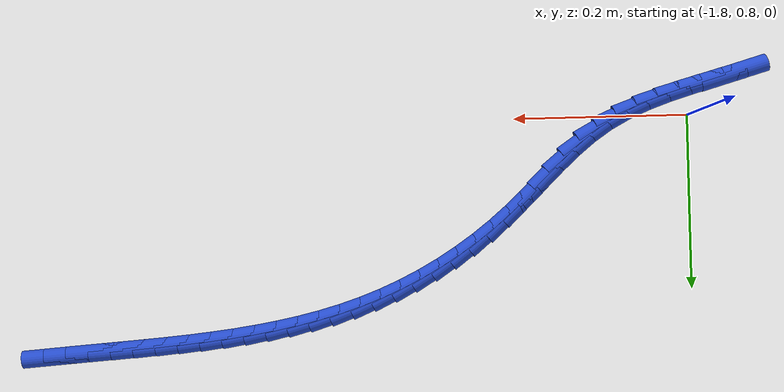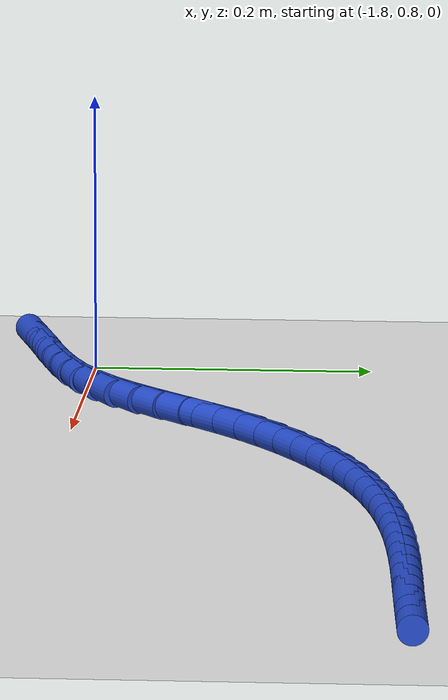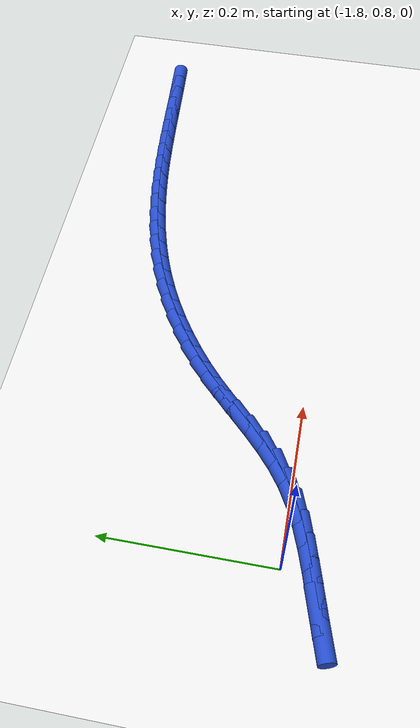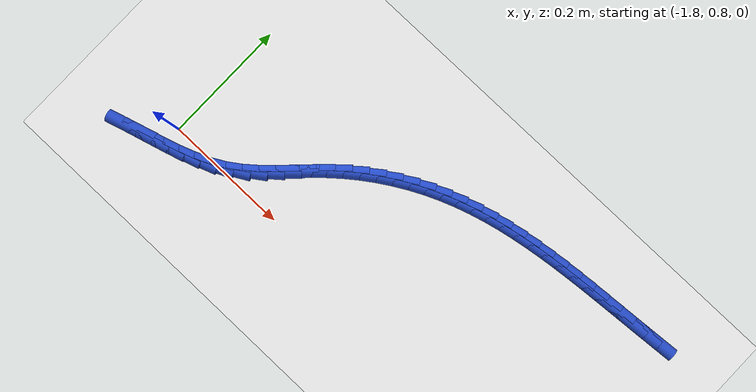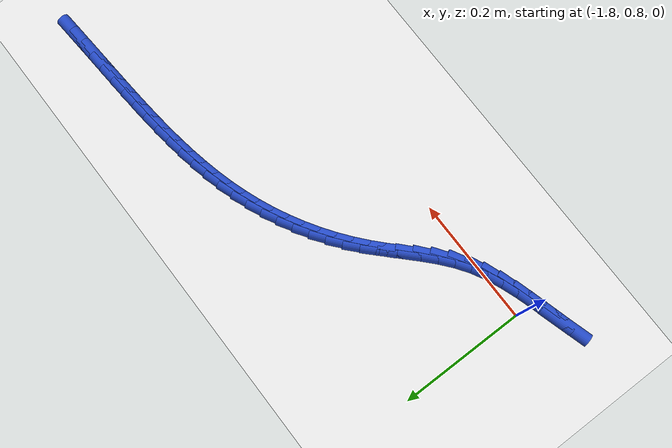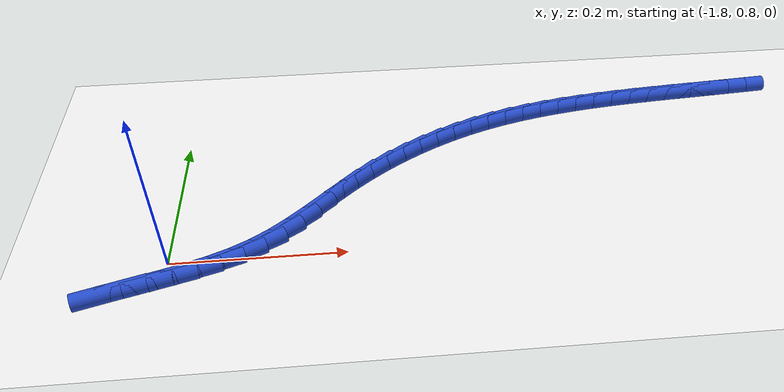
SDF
<sdf version="1.6">
 <world name="default">
  <model name="ground_plane">
   <static>1</static>
   <link name="link">
    <collision name="collision">
     <geometry><plane><normal>0 0 1</normal><size>100 100</size></plane></geometry>
     <surface><friction><ode><mu>100</mu><mu2>50</mu2></ode></friction></surface>
    </collision>
    <visual name="visual">
     <cast_shadows>0</cast_shadows>
     <geometry><plane><normal>0 0 1</normal><size>100 100</size></plane></geometry>
     <material>
      <script><uri>file://media/materials/scripts/gazebo.material</uri><name>Gazebo/WhiteGlow</name></script>
     </material>
    </visual>
   </link>
  </model>
  <model name="line">
   <link name="link_66">
    <pose>-1.0725171072861057 1.0593561913165797 0.01 0 1.57 0.0722436089262853</pose>
    <collision name="collision">
     <geometry><cylinder><radius>0.01</radius><length>0.08</length></cylinder></geometry>
    </collision>
    <visual name="visual">
     <material>
      <script><name>Gazebo/Blue</name><uri>file://media/materials/scripts/gazebo.material</uri></script>
     </material>
     <geometry><cylinder><radius>0.01</radius><length>0.08</length></cylinder></geometry>
    </visual>
   </link>
   <link name="link_67">
    <pose>-1.0976400348149369 1.0575380562307388 0.01 0 1.57 0.07104448228106962</pose>
    <collision name="collision">
     <geometry><cylinder><radius>0.01</radius><length>0.08</length></cylinder></geometry>
    </collision>
    <visual name="visual">
     <material>
      <script><name>Gazebo/Blue</name><uri>file://media/materials/scripts/gazebo.material</uri></script>
     </material>
     <geometry><cylinder><radius>0.01</radius><length>0.08</length></cylinder></geometry>
    </visual>
   </link>
   <link name="link_68">
    <pose>-1.1228500907721137 1.0557440014522426 0.01 0 1.57 0.06941004793169686</pose>
    <collision name="collision">
     <geometry><cylinder><radius>0.01</radius><length>0.08</length></cylinder></geometry>
    </collision>
    <visual name="visual">
     <material>
      <script><name>Gazebo/Blue</name><uri>file://media/materials/scripts/gazebo.material</uri></script>
     </material>
     <geometry><cylinder><radius>0.01</radius><length>0.08</length></cylinder></geometry>
    </visual>
   </link>
   <link name="link_69">
    <pose>-1.148138744328165 1.0539858905070938 0.01 0 1.57 0.0716015597323159</pose>
    <collision name="collision">
     <geometry><cylinder><radius>0.01</radius><length>0.08</length></cylinder></geometry>
    </collision>
    <visual name="visual">
     <material>
      <script><name>Gazebo/Blue</name><uri>file://media/materials/scripts/gazebo.material</uri></script>
     </material>
     <geometry><cylinder><radius>0.01</radius><length>0.08</length></cylinder></geometry>
    </visual>
   </link>
   <link name="link_70">
    <pose>-1.1734703437595058 1.0521690024851331 0.01 0 1.57 0.07769731624842807</pose>
    <collision name="collision">
     <geometry><cylinder><radius>0.01</radius><length>0.08</length></cylinder></geometry>
    </collision>
    <visual name="visual">
     <material>
      <script><name>Gazebo/Blue</name><uri>file://media/materials/scripts/gazebo.material</uri></script>
     </material>
     <geometry><cylinder><radius>0.01</radius><length>0.08</length></cylinder></geometry>
    </visual>
   </link>
   <link name="link_71">
    <pose>-1.198808651156051 1.0501963127779042 0.01 0 1.57 0.08770894665830445</pose>
    <collision name="collision">
     <geometry><cylinder><radius>0.01</radius><length>0.08</length></cylinder></geometry>
    </collision>
    <visual name="visual">
     <material>
      <script><name>Gazebo/Blue</name><uri>file://media/materials/scripts/gazebo.material</uri></script>
     </material>
     <geometry><cylinder><radius>0.01</radius><length>0.08</length></cylinder></geometry>
    </visual>
   </link>
   <link name="link_72">
    <pose>-1.2241174286077159 1.047970796776952 0.01 0 1.57 0.10167119293186301</pose>
    <collision name="collision">
     <geometry><cylinder><radius>0.01</radius><length>0.08</length></cylinder></geometry>
    </collision>
    <visual name="visual">
     <material>
      <script><name>Gazebo/Blue</name><uri>file://media/materials/scripts/gazebo.material</uri></script>
     </material>
     <geometry><cylinder><radius>0.01</radius><length>0.08</length></cylinder></geometry>
    </visual>
   </link>
   <link name="link_73">
    <pose>-1.2493604382044161 1.0453954298738213 0.01 0 1.57 0.11963760003585429</pose>
    <collision name="collision">
     <geometry><cylinder><radius>0.01</radius><length>0.08</length></cylinder></geometry>
    </collision>
    <visual name="visual">
     <material>
      <script><name>Gazebo/Blue</name><uri>file://media/materials/scripts/gazebo.material</uri></script>
     </material>
     <geometry><cylinder><radius>0.01</radius><length>0.08</length></cylinder></geometry>
    </visual>
   </link>
   <link name="link_74">
    <pose>-1.274501442036066 1.0423731874600561 0.01 0 1.57 0.14167440251892457</pose>
    <collision name="collision">
     <geometry><cylinder><radius>0.01</radius><length>0.08</length></cylinder></geometry>
    </collision>
    <visual name="visual">
     <material>
      <script><name>Gazebo/Blue</name><uri>file://media/materials/scripts/gazebo.material</uri></script>
     </material>
     <geometry><cylinder><radius>0.01</radius><length>0.08</length></cylinder></geometry>
    </visual>
   </link>
   <link name="link_75">
    <pose>-1.2995042021925802 1.0388070449272009 0.01 0 1.57 0.16785224706669022</pose>
    <collision name="collision">
     <geometry><cylinder><radius>0.01</radius><length>0.08</length></cylinder></geometry>
    </collision>
    <visual name="visual">
     <material>
      <script><name>Gazebo/Blue</name><uri>file://media/materials/scripts/gazebo.material</uri></script>
     </material>
     <geometry><cylinder><radius>0.01</radius><length>0.08</length></cylinder></geometry>
    </visual>
   </link>
   <link name="link_76">
    <pose>-1.3243324807638752 1.0345999776668007 0.01 0 1.57 0.1982353748869808</pose>
    <collision name="collision">
     <geometry><cylinder><radius>0.01</radius><length>0.08</length></cylinder></geometry>
    </collision>
    <visual name="visual">
     <material>
      <script><name>Gazebo/Blue</name><uri>file://media/materials/scripts/gazebo.material</uri></script>
     </material>
     <geometry><cylinder><radius>0.01</radius><length>0.08</length></cylinder></geometry>
    </visual>
   </link>
   <link name="link_77">
    <pose>-1.3489500398398646 1.029654961070399 0.01 0 1.57 0.23286797814396953</pose>
    <collision name="collision">
     <geometry><cylinder><radius>0.01</radius><length>0.08</length></cylinder></geometry>
    </collision>
    <visual name="visual">
     <material>
      <script><name>Gazebo/Blue</name><uri>file://media/materials/scripts/gazebo.material</uri></script>
     </material>
     <geometry><cylinder><radius>0.01</radius><length>0.08</length></cylinder></geometry>
    </visual>
   </link>
   <link name="link_78">
    <pose>-1.3733206415104644 1.023874970529541 0.01 0 1.57 0.27175769354264806</pose>
    <collision name="collision">
     <geometry><cylinder><radius>0.01</radius><length>0.08</length></cylinder></geometry>
    </collision>
    <visual name="visual">
     <material>
      <script><name>Gazebo/Blue</name><uri>file://media/materials/scripts/gazebo.material</uri></script>
     </material>
     <geometry><cylinder><radius>0.01</radius><length>0.08</length></cylinder></geometry>
    </visual>
   </link>
   <link name="link_79">
    <pose>-1.3974080478655895 1.0171629814357708 0.01 0 1.57 0.31485665595257356</pose>
    <collision name="collision">
     <geometry><cylinder><radius>0.01</radius><length>0.08</length></cylinder></geometry>
    </collision>
    <visual name="visual">
     <material>
      <script><name>Gazebo/Blue</name><uri>file://media/materials/scripts/gazebo.material</uri></script>
     </material>
     <geometry><cylinder><radius>0.01</radius><length>0.08</length></cylinder></geometry>
    </visual>
   </link>
   <link name="link_80">
    <pose>-1.4211760209951538 1.0094219691806328 0.01 0 1.57 0.3620290250035916</pose>
    <collision name="collision">
     <geometry><cylinder><radius>0.01</radius><length>0.08</length></cylinder></geometry>
    </collision>
    <visual name="visual">
     <material>
      <script><name>Gazebo/Blue</name><uri>file://media/materials/scripts/gazebo.material</uri></script>
     </material>
     <geometry><cylinder><radius>0.01</radius><length>0.08</length></cylinder></geometry>
    </visual>
   </link>
   <link name="link_81">
    <pose>-1.4445882470236788 1.0005552646984386 0.01 0 1.57 0.4116936275311137</pose>
    <collision name="collision">
     <geometry><cylinder><radius>0.01</radius><length>0.08</length></cylinder></geometry>
    </collision>
    <visual name="visual">
     <material>
      <script><name>Gazebo/Blue</name><uri>file://media/materials/scripts/gazebo.material</uri></script>
     </material>
     <geometry><cylinder><radius>0.01</radius><length>0.08</length></cylinder></geometry>
    </visual>
   </link>
   <link name="link_82">
    <pose>-1.4675995996724436 0.9905074438376876 0.01 0 1.57 0.4611957048522582</pose>
    <collision name="collision">
     <geometry><cylinder><radius>0.01</radius><length>0.08</length></cylinder></geometry>
    </collision>
    <visual name="visual">
     <material>
      <script><name>Gazebo/Blue</name><uri>file://media/materials/scripts/gazebo.material</uri></script>
     </material>
     <geometry><cylinder><radius>0.01</radius><length>0.08</length></cylinder></geometry>
    </visual>
   </link>
   <link name="link_83">
    <pose>-1.4901480380280288 0.9793022484403023 0.01 0 1.57 0.5104117197355084</pose>
    <collision name="collision">
     <geometry><cylinder><radius>0.01</radius><length>0.08</length></cylinder></geometry>
    </collision>
    <visual name="visual">
     <material>
      <script><name>Gazebo/Blue</name><uri>file://media/materials/scripts/gazebo.material</uri></script>
     </material>
     <geometry><cylinder><radius>0.01</radius><length>0.08</length></cylinder></geometry>
    </visual>
   </link>
   <link name="link_84">
    <pose>-1.5121696054677067 0.966972386491007 0.01 0 1.57 0.5595251586221003</pose>
    <collision name="collision">
     <geometry><cylinder><radius>0.01</radius><length>0.08</length></cylinder></geometry>
    </collision>
    <visual name="visual">
     <material>
      <script><name>Gazebo/Blue</name><uri>file://media/materials/scripts/gazebo.material</uri></script>
     </material>
     <geometry><cylinder><radius>0.01</radius><length>0.08</length></cylinder></geometry>
    </visual>
   </link>
   <link name="link_85">
    <pose>-1.5336003453687537 0.9535505659745285 0.01 0 1.57 0.6087171516924712</pose>
    <collision name="collision">
     <geometry><cylinder><radius>0.01</radius><length>0.08</length></cylinder></geometry>
    </collision>
    <visual name="visual">
     <material>
      <script><name>Gazebo/Blue</name><uri>file://media/materials/scripts/gazebo.material</uri></script>
     </material>
     <geometry><cylinder><radius>0.01</radius><length>0.08</length></cylinder></geometry>
    </visual>
   </link>
   <link name="link_86">
    <pose>-1.5543763011084424 0.9390694948755918 0.01 0 1.57 0.6581650278645419</pose>
    <collision name="collision">
     <geometry><cylinder><radius>0.01</radius><length>0.08</length></cylinder></geometry>
    </collision>
    <visual name="visual">
     <material>
      <script><name>Gazebo/Blue</name><uri>file://media/materials/scripts/gazebo.material</uri></script>
     </material>
     <geometry><cylinder><radius>0.01</radius><length>0.08</length></cylinder></geometry>
    </visual>
   </link>
   <link name="link_87">
    <pose>-1.5744335160640481 0.9235618811789232 0.01 0 1.57 0.7080407682319888</pose>
    <collision name="collision">
     <geometry><cylinder><radius>0.01</radius><length>0.08</length></cylinder></geometry>
    </collision>
    <visual name="visual">
     <material>
      <script><name>Gazebo/Blue</name><uri>file://media/materials/scripts/gazebo.material</uri></script>
     </material>
     <geometry><cylinder><radius>0.01</radius><length>0.08</length></cylinder></geometry>
    </visual>
   </link>
   <link name="link_88">
    <pose>-1.5937080336128449 0.9070604328692482 0.01 0 1.57 0.7548777086198663</pose>
    <collision name="collision">
     <geometry><cylinder><radius>0.01</radius><length>0.08</length></cylinder></geometry>
    </collision>
    <visual name="visual">
     <material>
      <script><name>Gazebo/Blue</name><uri>file://media/materials/scripts/gazebo.material</uri></script>
     </material>
     <geometry><cylinder><radius>0.01</radius><length>0.08</length></cylinder></geometry>
    </visual>
   </link>
   <link name="link_89">
    <pose>-1.6121995163430067 0.8896645879167006 0.01 0 1.57 0.7802865817193972</pose>
    <collision name="collision">
     <geometry><cylinder><radius>0.01</radius><length>0.08</length></cylinder></geometry>
    </collision>
    <visual name="visual">
     <material>
      <script><name>Gazebo/Blue</name><uri>file://media/materials/scripts/gazebo.material</uri></script>
     </material>
     <geometry><cylinder><radius>0.01</radius><length>0.08</length></cylinder></geometry>
    </visual>
   </link>
   <link name="link_90">
    <pose>-1.6302327353127724 0.871814789518556 0.01 0 1.57 0.7784448932086429</pose>
    <collision name="collision">
     <geometry><cylinder><radius>0.01</radius><length>0.08</length></cylinder></geometry>
    </collision>
    <visual name="visual">
     <material>
      <script><name>Gazebo/Blue</name><uri>file://media/materials/scripts/gazebo.material</uri></script>
     </material>
     <geometry><cylinder><radius>0.01</radius><length>0.08</length></cylinder></geometry>
    </visual>
   </link>
   <link name="link_91">
    <pose>-1.6482360398654228 0.8540601238016665 0.01 0 1.57 0.7490496735617109</pose>
    <collision name="collision">
     <geometry><cylinder><radius>0.01</radius><length>0.08</length></cylinder></geometry>
    </collision>
    <visual name="visual">
     <material>
      <script><name>Gazebo/Blue</name><uri>file://media/materials/scripts/gazebo.material</uri></script>
     </material>
     <geometry><cylinder><radius>0.01</radius><length>0.08</length></cylinder></geometry>
    </visual>
   </link>
   <link name="link_92">
    <pose>-1.6666378235036645 0.8369497232115612 0.01 0 1.57 0.6914490335959976</pose>
    <collision name="collision">
     <geometry><cylinder><radius>0.01</radius><length>0.08</length></cylinder></geometry>
    </collision>
    <visual name="visual">
     <material>
      <script><name>Gazebo/Blue</name><uri>file://media/materials/scripts/gazebo.material</uri></script>
     </material>
     <geometry><cylinder><radius>0.01</radius><length>0.08</length></cylinder></geometry>
    </visual>
   </link>
   <link name="link_93">
    <pose>-1.685866479730201 0.8210327201937694 0.01 0 1.57 0.605323524482801</pose>
    <collision name="collision">
     <geometry><cylinder><radius>0.01</radius><length>0.08</length></cylinder></geometry>
    </collision>
    <visual name="visual">
     <material>
      <script><name>Gazebo/Blue</name><uri>file://media/materials/scripts/gazebo.material</uri></script>
     </material>
     <geometry><cylinder><radius>0.01</radius><length>0.08</length></cylinder></geometry>
    </visual>
   </link>
   <link name="link_94">
    <pose>-1.7063503999336966 0.8068582445245109 0.01 0 1.57 0.500781999275856</pose>
    <collision name="collision">
     <geometry><cylinder><radius>0.01</radius><length>0.08</length></cylinder></geometry>
    </collision>
    <visual name="visual">
     <material>
      <script><name>Gazebo/Blue</name><uri>file://media/materials/scripts/gazebo.material</uri></script>
     </material>
     <geometry><cylinder><radius>0.01</radius><length>0.08</length></cylinder></geometry>
    </visual>
   </link>
   <link name="link_95">
    <pose>-1.7283799065131096 0.7948010922536599 0.01 0 1.57 0.4121898481222716</pose>
    <collision name="collision">
     <geometry><cylinder><radius>0.01</radius><length>0.08</length></cylinder></geometry>
    </collision>
    <visual name="visual">
     <material>
      <script><name>Gazebo/Blue</name><uri>file://media/materials/scripts/gazebo.material</uri></script>
     </material>
     <geometry><cylinder><radius>0.01</radius><length>0.08</length></cylinder></geometry>
    </visual>
   </link>
   <link name="link_96">
    <pose>-1.751733634165206 0.784589973557351 0.01 0 1.57 0.3464394256339781</pose>
    <collision name="collision">
     <geometry><cylinder><radius>0.01</radius><length>0.08</length></cylinder></geometry>
    </collision>
    <visual name="visual">
     <material>
      <script><name>Gazebo/Blue</name><uri>file://media/materials/scripts/gazebo.material</uri></script>
     </material>
     <geometry><cylinder><radius>0.01</radius><length>0.08</length></cylinder></geometry>
    </visual>
   </link>
   <link name="link_97">
    <pose>-1.776071707148988 0.7758039606208091 0.01 0 1.57 0.30196529373090625</pose>
    <collision name="collision">
     <geometry><cylinder><radius>0.01</radius><length>0.08</length></cylinder></geometry>
    </collision>
    <visual name="visual">
     <material>
      <script><name>Gazebo/Blue</name><uri>file://media/materials/scripts/gazebo.material</uri></script>
     </material>
     <geometry><cylinder><radius>0.01</radius><length>0.08</length></cylinder></geometry>
    </visual>
   </link>
   <link name="link_98">
    <pose>-1.8010542497234563 0.768022125629259 0.01 0 1.57 0.2773374233389165</pose>
    <collision name="collision">
     <geometry><cylinder><radius>0.01</radius><length>0.08</length></cylinder></geometry>
    </collision>
    <visual name="visual">
     <material>
      <script><name>Gazebo/Blue</name><uri>file://media/materials/scripts/gazebo.material</uri></script>
     </material>
     <geometry><cylinder><radius>0.01</radius><length>0.08</length></cylinder></geometry>
    </visual>
   </link>
   <link name="link_99">
    <pose>-1.8263413861476145 0.760823540767926 0.01 0 1.57 0.27175028360615966</pose>
    <collision name="collision">
     <geometry><cylinder><radius>0.01</radius><length>0.08</length></cylinder></geometry>
    </collision>
    <visual name="visual">
     <material>
      <script><name>Gazebo/Blue</name><uri>file://media/materials/scripts/gazebo.material</uri></script>
     </material>
     <geometry><cylinder><radius>0.01</radius><length>0.08</length></cylinder></geometry>
    </visual>
   </link>
   <link name="link_100">
    <pose>-1.8515932406804643 0.7537872782220357 0.01 0 1.57 0.28524442113274695</pose>
    <collision name="collision">
     <geometry><cylinder><radius>0.01</radius><length>0.08</length></cylinder></geometry>
    </collision>
    <visual name="visual">
     <material>
      <script><name>Gazebo/Blue</name><uri>file://media/materials/scripts/gazebo.material</uri></script>
     </material>
     <geometry><cylinder><radius>0.01</radius><length>0.08</length></cylinder></geometry>
    </visual>
   </link>
  </model>
 </world>
</sdf>
